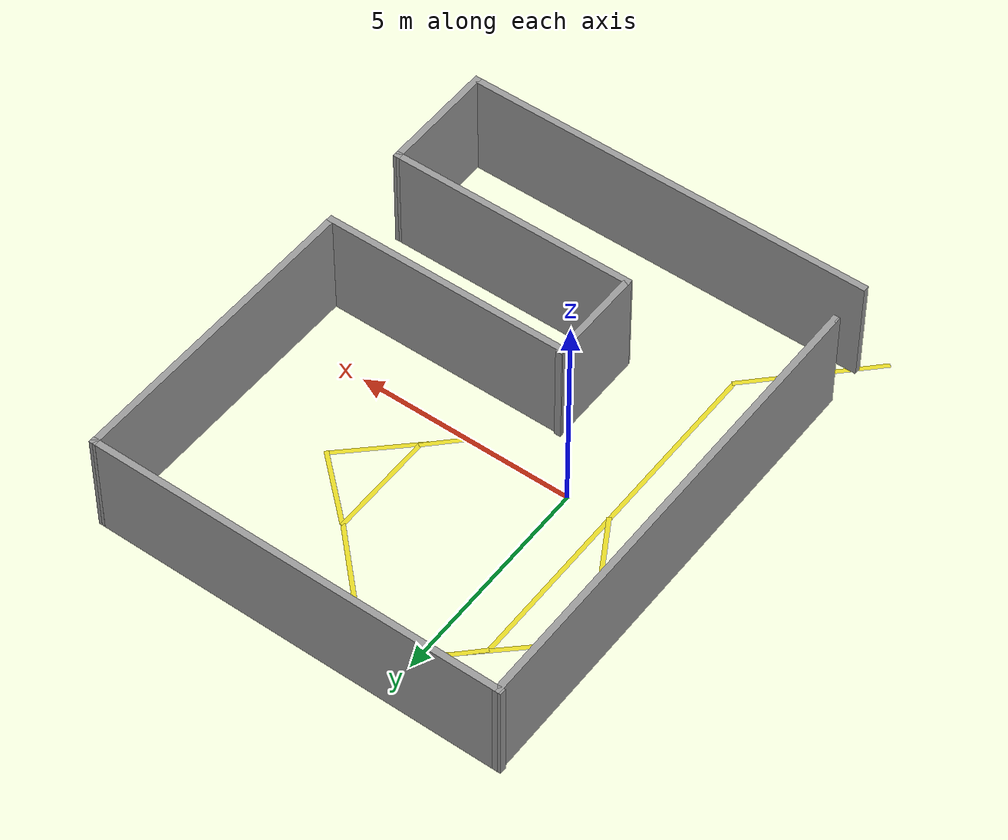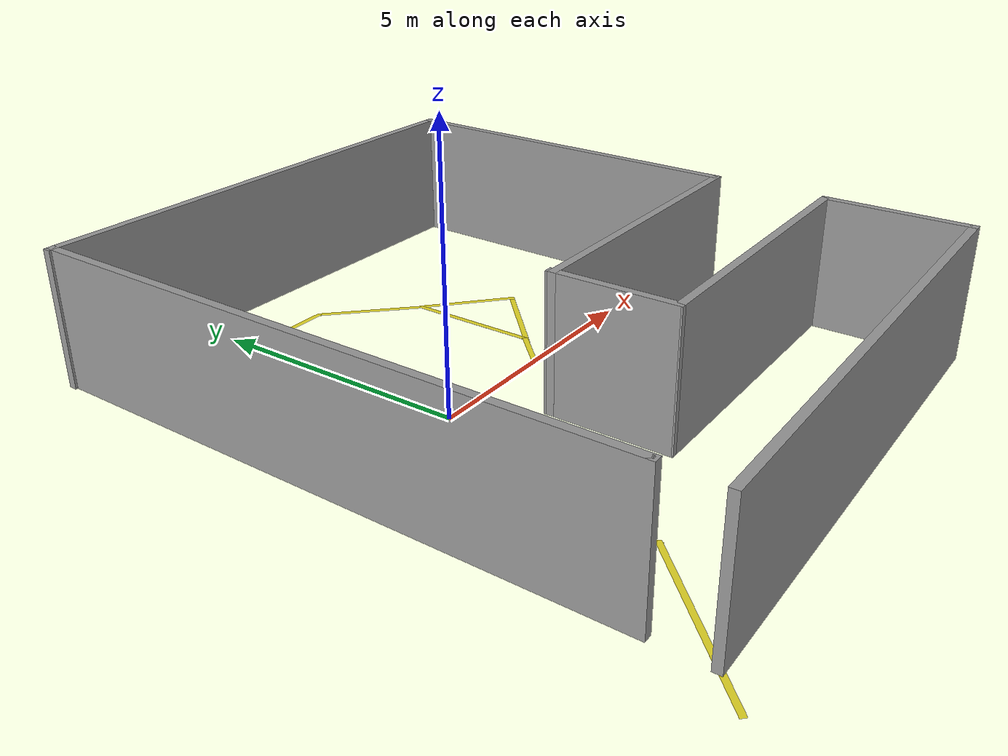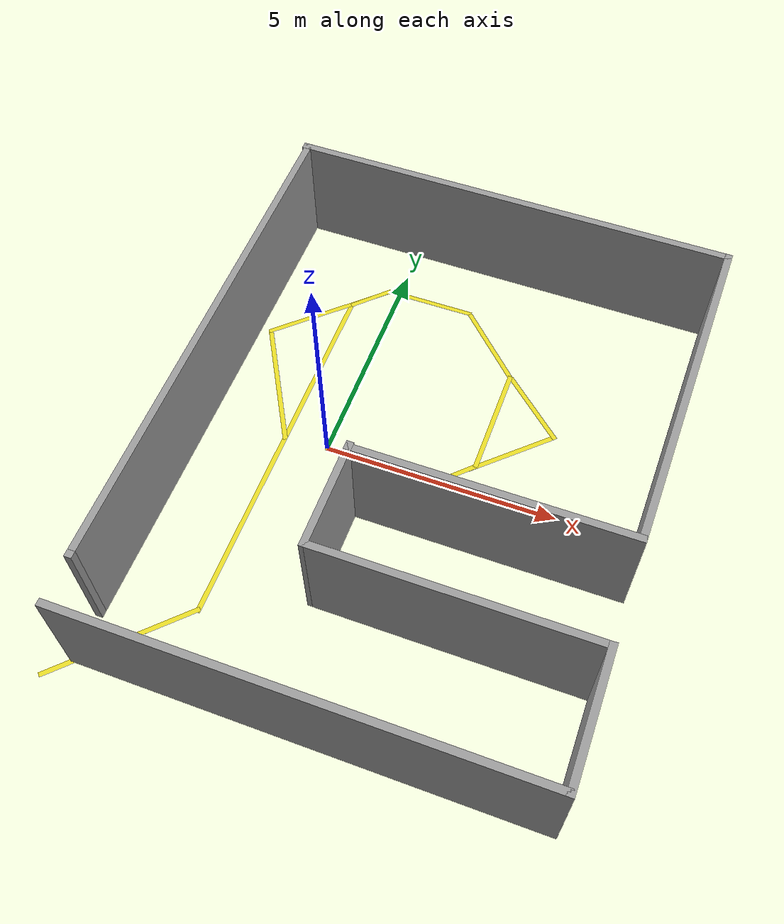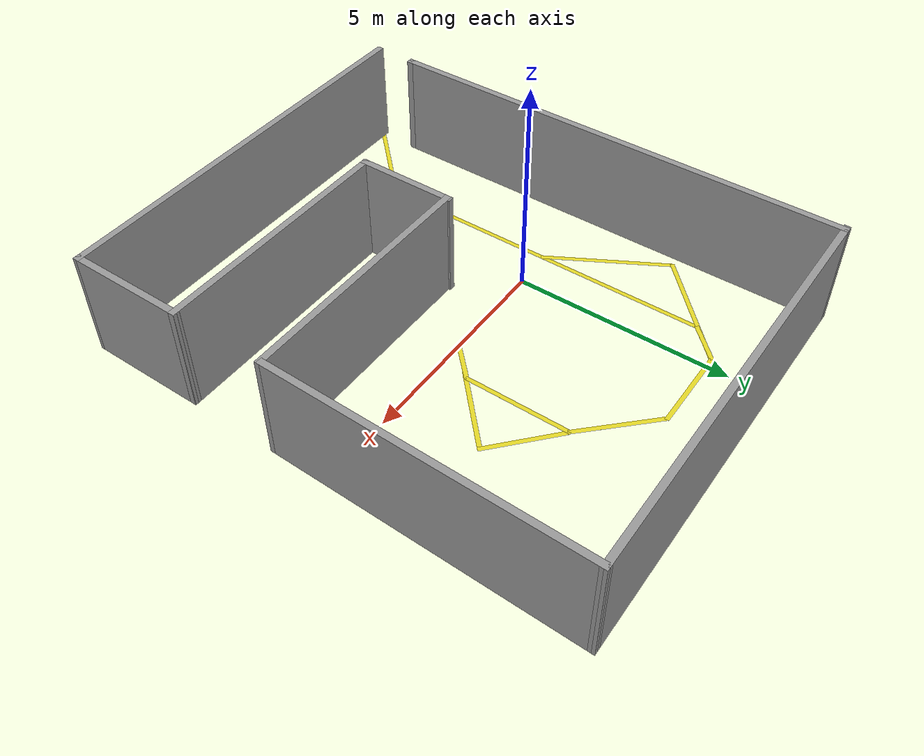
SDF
<sdf version="1.6">
 <world name="default">
  <light name="sun" type="directional">
   <pose>0 0 10 0 -0 0</pose>
   <diffuse>0.8 0.8 0.8 1</diffuse>
   <specular>0.1 0.1 0.1 1</specular>
   <attenuation>
    <range>1000</range>
    <constant>0.9</constant>
    <linear>0.01</linear>
    <quadratic>0.001</quadratic>
   </attenuation>
   <direction>-0.5 0.5 -1</direction>
  </light>
  <gravity>0 0 -9.8</gravity>
  <magnetic_field>6e-06 2.3e-05 -4.2e-05</magnetic_field>
  <atmosphere type="adiabatic"/>
  <physics name="default_physics" default="0" type="ode">
   <max_step_size>0.001</max_step_size>
   <real_time_factor>1</real_time_factor>
   <real_time_update_rate>1000</real_time_update_rate>
  </physics>
  <scene><ambient>0.4 0.4 0.4 1</ambient><background>0.7 0.7 0.7 1</background><shadows>1</shadows></scene>
  <spherical_coordinates>
   <surface_model>EARTH_WGS84</surface_model>
   <latitude_deg>0</latitude_deg>
   <longitude_deg>0</longitude_deg>
   <elevation>0</elevation>
   <heading_deg>0</heading_deg>
  </spherical_coordinates>
  <model name="yellow line_0">
   <static>1</static>
   <link name="link_ground">
    <collision name="collision">
     <geometry><plane><normal>0 0 1</normal><size>0.1 2.5</size></plane></geometry>
     <surface><friction><ode><mu>100</mu><mu2>50</mu2></ode></friction></surface>
    </collision>
    <visual name="visual_ground">
     <cast_shadows>0</cast_shadows>
     <geometry><plane><normal>0 0 1</normal><size>0.1 2.5</size></plane></geometry>
     <material>
      <script><uri>file://media/materials/scripts/gazebo.material</uri><name>Gazebo/Yellow</name></script>
     </material>
    </visual>
   </link>
   <pose>1.21409 0 0 0 -0 1.57</pose>
  </model>
  <model name="yellow line_1">
   <static>1</static>
   <link name="link_ground">
    <collision name="collision">
     <geometry><plane><normal>0 0 1</normal><size>0.1 1</size></plane></geometry>
     <surface><friction><ode><mu>100</mu><mu2>50</mu2></ode></friction></surface>
    </collision>
    <visual name="visual_ground">
     <cast_shadows>0</cast_shadows>
     <geometry><plane><normal>0 0 1</normal><size>0.1 1</size></plane></geometry>
     <material>
      <script><uri>file://media/materials/scripts/gazebo.material</uri><name>Gazebo/Yellow</name></script>
     </material>
    </visual>
   </link>
   <pose>2.75 0.32 0 0 0 -0.784999</pose>
  </model>
  <model name="yellow line_2">
   <static>1</static>
   <link name="link_ground">
    <collision name="collision">
     <geometry><plane><normal>0 0 1</normal><size>0.1 2.5</size></plane></geometry>
     <surface><friction><ode><mu>100</mu><mu2>50</mu2></ode></friction></surface>
    </collision>
    <visual name="visual_ground">
     <cast_shadows>0</cast_shadows>
     <geometry><plane><normal>0 0 1</normal><size>0.1 2.5</size></plane></geometry>
     <material>
      <script><uri>file://media/materials/scripts/gazebo.material</uri><name>Gazebo/Yellow</name></script>
     </material>
    </visual>
   </link>
   <pose>3.08297 1.87937 0 0 -0 0</pose>
  </model>
  <model name="yellow line_3">
   <static>1</static>
   <link name="link_ground">
    <collision name="collision">
     <geometry><plane><normal>0 0 1</normal><size>0.1 2</size></plane></geometry>
     <surface><friction><ode><mu>100</mu><mu2>50</mu2></ode></friction></surface>
    </collision>
    <visual name="visual_ground">
     <cast_shadows>0</cast_shadows>
     <geometry><plane><normal>0 0 1</normal><size>0.1 2</size></plane></geometry>
     <material>
      <script><uri>file://media/materials/scripts/gazebo.material</uri><name>Gazebo/Yellow</name></script>
     </material>
    </visual>
   </link>
   <pose>2.4 3.78 0 0 -0 0.785</pose>
  </model>
  <model name="yellow line_4">
   <static>1</static>
   <link name="link_ground">
    <collision name="collision">
     <geometry><plane><normal>0 0 1</normal><size>0.1 2</size></plane></geometry>
     <surface><friction><ode><mu>100</mu><mu2>50</mu2></ode></friction></surface>
    </collision>
    <visual name="visual_ground">
     <cast_shadows>0</cast_shadows>
     <geometry><plane><normal>0 0 1</normal><size>0.1 2</size></plane></geometry>
     <material>
      <script><uri>file://media/materials/scripts/gazebo.material</uri><name>Gazebo/Yellow</name></script>
     </material>
    </visual>
   </link>
   <pose>0.72 4.5 0 0 -0 1.57</pose>
  </model>
  <model name="yellow line_5">
   <static>1</static>
   <link name="link_ground">
    <collision name="collision">
     <geometry><plane><normal>0 0 1</normal><size>0.1 1</size></plane></geometry>
     <surface><friction><ode><mu>100</mu><mu2>50</mu2></ode></friction></surface>
    </collision>
    <visual name="visual_ground">
     <cast_shadows>0</cast_shadows>
     <geometry><plane><normal>0 0 1</normal><size>0.1 1</size></plane></geometry>
     <material>
      <script><uri>file://media/materials/scripts/gazebo.material</uri><name>Gazebo/Yellow</name></script>
     </material>
    </visual>
   </link>
   <pose>-0.6 4.16 0 0 0 -0.785</pose>
  </model>
  <model name="yellow line_7">
   <static>1</static>
   <link name="link_ground">
    <collision name="collision">
     <geometry><plane><normal>0 0 1</normal><size>0.1 8.2</size></plane></geometry>
     <surface><friction><ode><mu>100</mu><mu2>50</mu2></ode></friction></surface>
    </collision>
    <visual name="visual_ground">
     <cast_shadows>0</cast_shadows>
     <geometry><plane><normal>0 0 1</normal><size>0.1 8.2</size></plane></geometry>
     <material>
      <script><uri>file://media/materials/scripts/gazebo.material</uri><name>Gazebo/Yellow</name></script>
     </material>
    </visual>
   </link>
   <pose>-0.94783 -0.25 0 0 -0 0</pose>
  </model>
  <model name="rooms_0">
   <pose>2.03304 -0.08026 0 0 -0 0</pose>
   <link name="Wall_1">
    <collision name="Wall_1_Collision">
     <geometry><box><size>0.15 0.15 2.5</size></box></geometry>
     <pose>0 0 1.25 0 -0 0</pose>
    </collision>
    <visual name="Wall_1_Visual">
     <pose>0 0 1.25 0 -0 0</pose>
     <geometry><box><size>0.15 0.15 2.5</size></box></geometry>
     <material>
      <script><uri>file://media/materials/scripts/gazebo.material</uri><name>Gazebo/Grey</name></script>
      <ambient>1 1 1 1</ambient>
     </material>
    </visual>
    <pose>4.75175 5.87683 0 0 -0 0</pose>
   </link>
   <link name="Wall_10">
    <collision name="Wall_10_Collision">
     <geometry><box><size>0.15 0.15 2.5</size></box></geometry>
     <pose>0 0 1.25 0 -0 0</pose>
    </collision>
    <visual name="Wall_10_Visual">
     <pose>0 0 1.25 0 -0 0</pose>
     <geometry><box><size>0.15 0.15 2.5</size></box></geometry>
     <material>
      <script><uri>file://media/materials/scripts/gazebo.material</uri><name>Gazebo/Grey</name></script>
      <ambient>1 1 1 1</ambient>
     </material>
    </visual>
    <pose>-4.71225 5.92282 0 0 -0 0</pose>
   </link>
   <link name="Wall_12">
    <collision name="Wall_12_Collision">
     <geometry><box><size>9.61411 0.15 2.5</size></box></geometry>
     <pose>0 0 1.25 0 -0 0</pose>
    </collision>
    <visual name="Wall_12_Visual">
     <pose>0 0 1.25 0 -0 0</pose>
     <geometry><box><size>9.61411 0.15 2.5</size></box></geometry>
     <material>
      <script><uri>file://media/materials/scripts/gazebo.material</uri><name>Gazebo/Grey</name></script>
      <ambient>1 1 1 1</ambient>
     </material>
    </visual>
    <pose>-0.020481 5.89982 0 0 0 -0.00486</pose>
   </link>
   <link name="Wall_13">
    <collision name="Wall_13_Collision">
     <geometry><box><size>0.15 0.15 2.5</size></box></geometry>
     <pose>0 0 1.25 0 -0 0</pose>
    </collision>
    <visual name="Wall_13_Visual">
     <pose>0 0 1.25 0 -0 0</pose>
     <geometry><box><size>0.15 0.15 2.5</size></box></geometry>
     <material>
      <script><uri>file://media/materials/scripts/gazebo.material</uri><name>Gazebo/Grey</name></script>
      <ambient>1 1 1 1</ambient>
     </material>
    </visual>
    <pose>4.75175 5.87683 0 0 -0 0</pose>
   </link>
   <link name="Wall_15">
    <collision name="Wall_15_Collision">
     <geometry><box><size>5.75 0.15 2.5</size></box></geometry>
     <pose>0 0 1.25 0 -0 0</pose>
    </collision>
    <visual name="Wall_15_Visual">
     <pose>0 0 1.25 0 -0 0</pose>
     <geometry><box><size>5.75 0.15 2.5</size></box></geometry>
     <material>
      <script><uri>file://media/materials/scripts/gazebo.material</uri><name>Gazebo/Grey</name></script>
      <ambient>1 1 1 1</ambient>
     </material>
    </visual>
    <pose>1.84829 -1.17727 0 0 -0 3.14159</pose>
   </link>
   <link name="Wall_16">
    <collision name="Wall_16_Collision">
     <geometry><box><size>2.33649 0.15 2.5</size></box></geometry>
     <pose>0 0 1.25 0 -0 0</pose>
    </collision>
    <visual name="Wall_16_Visual">
     <pose>0 0 1.25 0 -0 0</pose>
     <geometry><box><size>2.33649 0.15 2.5</size></box></geometry>
     <material>
      <script><uri>file://media/materials/scripts/gazebo.material</uri><name>Gazebo/Grey</name></script>
      <ambient>1 1 1 1</ambient>
     </material>
    </visual>
    <pose>-0.951466 -2.23029 0 0 0 -1.57058</pose>
   </link>
   <link name="Wall_17">
    <collision name="Wall_17_Collision">
     <geometry><box><size>5.75 0.15 2.5</size></box></geometry>
     <pose>0 0 1.25 0 -0 0</pose>
    </collision>
    <visual name="Wall_17_Visual">
     <pose>0 0 1.25 0 -0 0</pose>
     <geometry><box><size>5.75 0.15 2.5</size></box></geometry>
     <material>
      <script><uri>file://media/materials/scripts/gazebo.material</uri><name>Gazebo/Grey</name></script>
      <ambient>1 1 1 1</ambient>
     </material>
    </visual>
    <pose>1.84878 -3.32353 0 0 -0 0</pose>
   </link>
   <link name="Wall_18">
    <collision name="Wall_18_Collision">
     <geometry><box><size>2.74964 0.15 2.5</size></box></geometry>
     <pose>0 0 1.25 0 -0 0</pose>
    </collision>
    <visual name="Wall_18_Visual">
     <pose>0 0 1.25 0 -0 0</pose>
     <geometry><box><size>2.74964 0.15 2.5</size></box></geometry>
     <material>
      <script><uri>file://media/materials/scripts/gazebo.material</uri><name>Gazebo/Grey</name></script>
      <ambient>1 1 1 1</ambient>
     </material>
    </visual>
    <pose>4.64853 -4.62335 0 0 0 -1.57098</pose>
   </link>
   <link name="Wall_19">
    <collision name="Wall_19_Collision">
     <geometry><box><size>9.5 0.15 2.5</size></box></geometry>
     <pose>0 0 1.25 0 -0 0</pose>
    </collision>
    <visual name="Wall_19_Visual">
     <pose>0 0 1.25 0 -0 0</pose>
     <geometry><box><size>9.5 0.15 2.5</size></box></geometry>
     <material>
      <script><uri>file://media/materials/scripts/gazebo.material</uri><name>Gazebo/Grey</name></script>
      <ambient>1 1 1 1</ambient>
     </material>
    </visual>
    <pose>-0.026708 -5.92317 0 0 -0 3.14159</pose>
   </link>
   <link name="Wall_22">
    <collision name="Wall_22_Collision">
     <geometry><box><size>11 0.15 2.5</size></box></geometry>
     <pose>0 0 1.25 0 -0 0</pose>
    </collision>
    <visual name="Wall_22_Visual">
     <pose>0 0 1.25 0 -0 0</pose>
     <geometry><box><size>11 0.15 2.5</size></box></geometry>
     <material>
      <script><uri>file://media/materials/scripts/gazebo.material</uri><name>Gazebo/Grey</name></script>
      <ambient>1 1 1 1</ambient>
     </material>
    </visual>
    <pose>-4.71225 0.497825 0 0 0 -1.5708</pose>
   </link>
   <link name="Wall_23">
    <collision name="Wall_23_Collision">
     <geometry><box><size>0.15 0.15 2.5</size></box></geometry>
     <pose>0 0 1.25 0 -0 0</pose>
    </collision>
    <visual name="Wall_23_Visual">
     <pose>0 0 1.25 0 -0 0</pose>
     <geometry><box><size>0.15 0.15 2.5</size></box></geometry>
     <material>
      <script><uri>file://media/materials/scripts/gazebo.material</uri><name>Gazebo/Grey</name></script>
      <ambient>1 1 1 1</ambient>
     </material>
    </visual>
    <pose>-4.71225 -4.92718 0 0 -0 0</pose>
   </link>
   <link name="Wall_3">
    <collision name="Wall_3_Collision">
     <geometry><box><size>7.16463 0.15 2.5</size></box></geometry>
     <pose>0 0 1.25 0 -0 0</pose>
    </collision>
    <visual name="Wall_3_Visual">
     <pose>0 0 1.25 0 -0 0</pose>
     <geometry><box><size>7.16463 0.15 2.5</size></box></geometry>
     <material>
      <script><uri>file://media/materials/scripts/gazebo.material</uri><name>Gazebo/Grey</name></script>
      <ambient>1 1 1 1</ambient>
     </material>
    </visual>
    <pose>4.70002 2.36989 0 0 0 -1.58554</pose>
   </link>
   <static>1</static>
  </model>
  <model name="yellow line_8">
   <static>1</static>
   <link name="link_ground">
    <collision name="collision">
     <geometry><plane><normal>0 0 1</normal><size>0.1 3.2</size></plane></geometry>
     <surface><friction><ode><mu>100</mu><mu2>50</mu2></ode></friction></surface>
    </collision>
    <visual name="visual_ground">
     <cast_shadows>0</cast_shadows>
     <geometry><plane><normal>0 0 1</normal><size>0.1 3.2</size></plane></geometry>
     <material>
      <script><uri>file://media/materials/scripts/gazebo.material</uri><name>Gazebo/Yellow</name></script>
     </material>
    </visual>
   </link>
   <pose>-2.05 -5.4 0 0 0 -0.785</pose>
  </model>
  <model name="yellow line">
   <pose>3.78198 2.48221 1e-06 4e-06 1e-06 0.836642</pose>
   <link name="link_ground">
    <collision name="collision">
     <geometry><box><size>0.1 1.83227 1e-05</size></box></geometry>
     <surface><friction><ode><mu>100</mu><mu2>50</mu2></ode></friction></surface>
    </collision>
    <visual name="visual_ground">
     <cast_shadows>0</cast_shadows>
     <geometry><box><size>0.1 1.83227 1e-05</size></box></geometry>
     <material>
      <script><uri>file://media/materials/scripts/gazebo.material</uri><name>Gazebo/Yellow</name></script>
     </material>
    </visual>
    <inertial>
     <inertia><ixx>1</ixx><ixy>0</ixy><ixz>0</ixz><iyy>1</iyy><iyz>0</iyz><izz>1</izz></inertia>
     <mass>1</mass>
    </inertial>
   </link>
  </model>
  <model name="yellow line_6">
   <pose>3.70265 1.219 -2e-06 -7e-06 1e-06 -0.813185</pose>
   <link name="link_ground">
    <collision name="collision">
     <geometry><box><size>0.1 2.03937 1e-05</size></box></geometry>
     <surface><friction><ode><mu>100</mu><mu2>50</mu2></ode></friction></surface>
    </collision>
    <visual name="visual_ground">
     <cast_shadows>0</cast_shadows>
     <geometry><box><size>0.1 2.03937 1e-05</size></box></geometry>
     <material>
      <script><uri>file://media/materials/scripts/gazebo.material</uri><name>Gazebo/Yellow</name></script>
     </material>
    </visual>
    <inertial>
     <inertia><ixx>1</ixx><ixy>0</ixy><ixz>0</ixz><iyy>1</iyy><iyz>0</iyz><izz>1</izz></inertia>
     <mass>1</mass>
    </inertial>
   </link>
  </model>
  <model name="yellow line_9">
   <pose>-1.32174 3.48711 -2e-06 -4e-06 0 -0.818939</pose>
   <link name="link_ground">
    <collision name="collision">
     <geometry><box><size>0.1 3 1e-05</size></box></geometry>
     <surface><friction><ode><mu>100</mu><mu2>50</mu2></ode></friction></surface>
    </collision>
    <visual name="visual_ground">
     <cast_shadows>0</cast_shadows>
     <geometry><box><size>0.1 3 1e-05</size></box></geometry>
     <material>
      <script><uri>file://media/materials/scripts/gazebo.material</uri><name>Gazebo/Yellow</name></script>
     </material>
    </visual>
    <inertial>
     <inertia><ixx>1</ixx><ixy>0</ixy><ixz>0</ixz><iyy>1</iyy><iyz>0</iyz><izz>1</izz></inertia>
     <mass>1</mass>
    </inertial>
   </link>
  </model>
  <model name="yellow line_10">
   <pose>-1.66271 1.21301 -2e-06 -4e-06 -0 0.514529</pose>
   <link name="link_ground">
    <collision name="collision">
     <geometry><box><size>0.1 3 1e-05</size></box></geometry>
     <surface><friction><ode><mu>100</mu><mu2>50</mu2></ode></friction></surface>
    </collision>
    <visual name="visual_ground">
     <cast_shadows>0</cast_shadows>
     <geometry><box><size>0.1 3 1e-05</size></box></geometry>
     <material>
      <script><uri>file://media/materials/scripts/gazebo.material</uri><name>Gazebo/Yellow</name></script>
     </material>
    </visual>
    <inertial>
     <inertia><ixx>1</ixx><ixy>0</ixy><ixz>0</ixz><iyy>1</iyy><iyz>0</iyz><izz>1</izz></inertia>
     <mass>1</mass>
    </inertial>
   </link>
  </model>
 </world>
</sdf>
